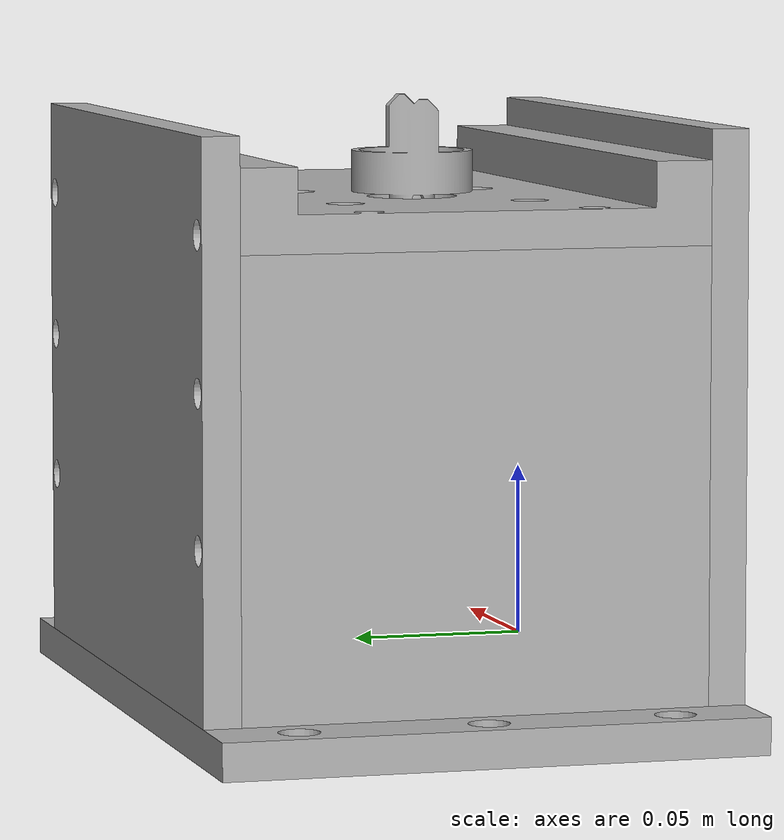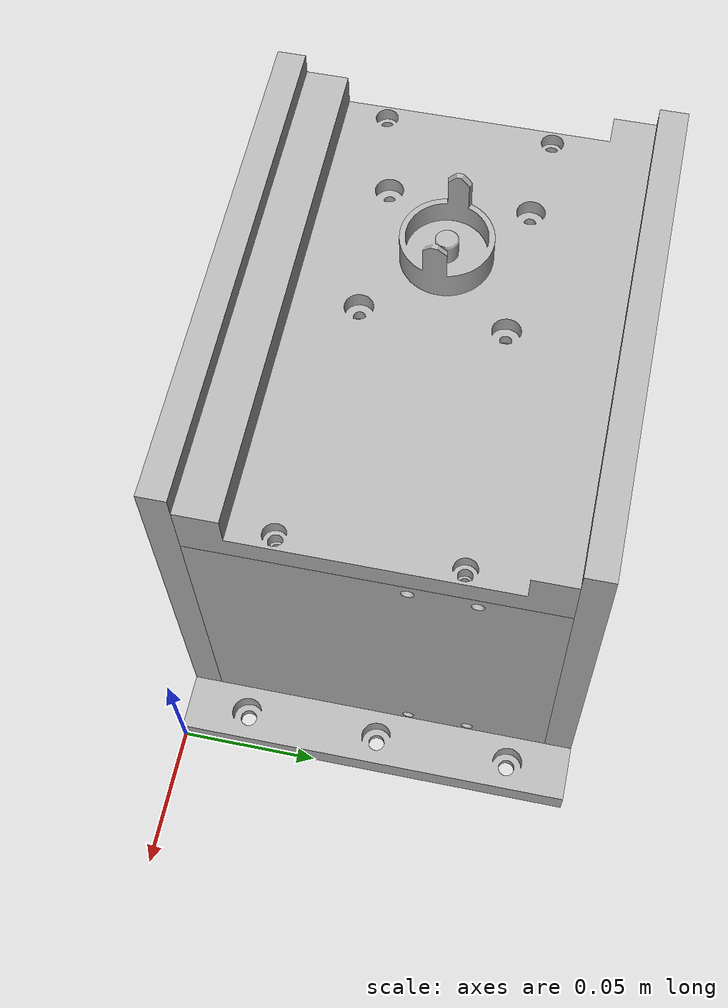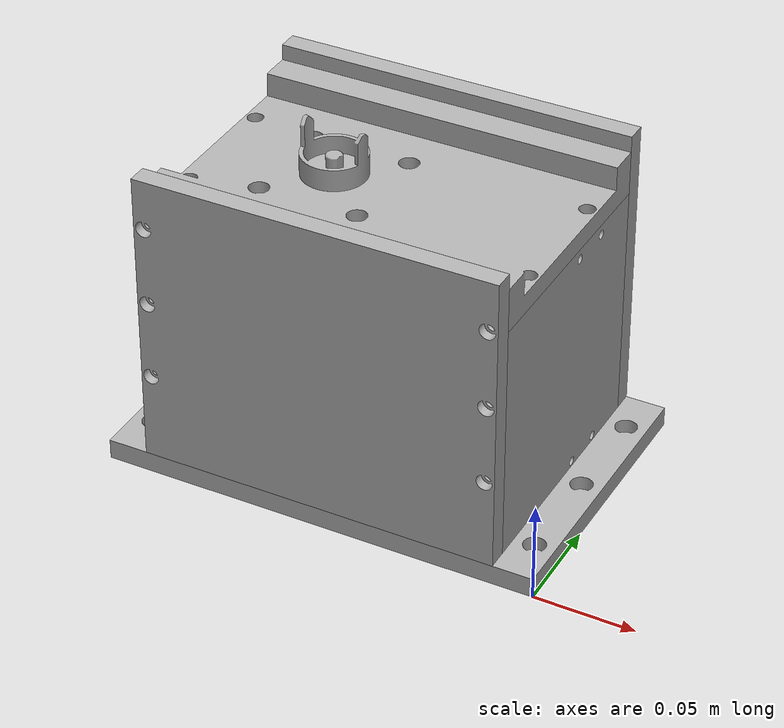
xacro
<?xml version="1.0" ?>
<robot name="고정장치" xmlns:xacro="http://www.ros.org/wiki/xacro">

<xacro:include filename="$(find 고정장치_description)/urdf/materials.xacro" />
<xacro:include filename="$(find 고정장치_description)/urdf/고정장치.trans" />
<xacro:include filename="$(find 고정장치_description)/urdf/고정장치.gazebo" />
<link name="base_link">
  <inertial>
    <origin xyz="-0.10999999999999556 0.07251121264321245 0.004996333843608021" rpy="0 0 0"/>
    <mass value="2.446873660836993"/>
    <inertia ixx="0.004289" iyy="0.00967" izz="0.013918" ixy="0.0" iyz="0.0" ixz="-0.0"/>
  </inertial>
  <visual>
    <origin xyz="0 0 0" rpy="0 0 0"/>
    <geometry>
      <mesh filename="package://고정장치_description/meshes/base_link.stl" scale="0.001 0.001 0.001"/>
    </geometry>
    <material name="silver"/>
  </visual>
  <collision>
    <origin xyz="0 0 0" rpy="0 0 0"/>
    <geometry>
      <mesh filename="package://고정장치_description/meshes/base_link.stl" scale="0.001 0.001 0.001"/>
    </geometry>
  </collision>
</link>

<link name="Servo1_1">
  <inertial>
    <origin xyz="3.4916514124461173e-14 8.487655023259322e-14 0.0005999999999809491" rpy="0 0 0"/>
    <mass value="0.006806278705239594"/>
    <inertia ixx="0.0" iyy="0.0" izz="1e-06" ixy="0.0" iyz="0.0" ixz="0.0"/>
  </inertial>
  <visual>
    <origin xyz="0.138 -0.0725 -0.0875" rpy="0 0 0"/>
    <geometry>
      <mesh filename="package://고정장치_description/meshes/Servo1_1.stl" scale="0.001 0.001 0.001"/>
    </geometry>
    <material name="silver"/>
  </visual>
  <collision>
    <origin xyz="0.138 -0.0725 -0.0875" rpy="0 0 0"/>
    <geometry>
      <mesh filename="package://고정장치_description/meshes/Servo1_1.stl" scale="0.001 0.001 0.001"/>
    </geometry>
  </collision>
</link>

<link name="Servo2_1">
  <inertial>
    <origin xyz="-0.0015816004302571796 5.898059818321144e-15 0.015322738889781397" rpy="0 0 0"/>
    <mass value="0.0040481964198345426"/>
    <inertia ixx="0.0" iyy="0.0" izz="0.0" ixy="0.0" iyz="-0.0" ixz="0.0"/>
  </inertial>
  <visual>
    <origin xyz="0.171 -0.0677 -0.0405" rpy="0 0 0"/>
    <geometry>
      <mesh filename="package://고정장치_description/meshes/Servo2_1.stl" scale="0.001 0.001 0.001"/>
    </geometry>
    <material name="silver"/>
  </visual>
  <collision>
    <origin xyz="0.171 -0.0677 -0.0405" rpy="0 0 0"/>
    <geometry>
      <mesh filename="package://고정장치_description/meshes/Servo2_1.stl" scale="0.001 0.001 0.001"/>
    </geometry>
  </collision>
</link>

<link name="L1_1">
  <inertial>
    <origin xyz="0.04000000000000252 8.58346151193061e-06 0.07498762221888246" rpy="0 0 0"/>
    <mass value="2.1009849657713837"/>
    <inertia ixx="0.003963" iyy="0.009546" izz="0.005618" ixy="0.0" iyz="-0.0" ixz="-0.0"/>
  </inertial>
  <visual>
    <origin xyz="0.15 -0.005 -0.01" rpy="0 0 0"/>
    <geometry>
      <mesh filename="package://고정장치_description/meshes/L1_1.stl" scale="0.001 0.001 0.001"/>
    </geometry>
    <material name="silver"/>
  </visual>
  <collision>
    <origin xyz="0.15 -0.005 -0.01" rpy="0 0 0"/>
    <geometry>
      <mesh filename="package://고정장치_description/meshes/L1_1.stl" scale="0.001 0.001 0.001"/>
    </geometry>
  </collision>
</link>

<link name="Back_1">
  <inertial>
    <origin xyz="-6.9111383282915995e-15 0.03250878091969619 0.05998243816059264" rpy="0 0 0"/>
    <mass value="1.1692860743084308"/>
    <inertia ixx="0.002917" iyy="0.00141" izz="0.001527" ixy="-0.0" iyz="-0.0" ixz="0.0"/>
  </inertial>
  <visual>
    <origin xyz="0.195 -0.04 -0.01" rpy="0 0 0"/>
    <geometry>
      <mesh filename="package://고정장치_description/meshes/Back_1.stl" scale="0.001 0.001 0.001"/>
    </geometry>
    <material name="silver"/>
  </visual>
  <collision>
    <origin xyz="0.195 -0.04 -0.01" rpy="0 0 0"/>
    <geometry>
      <mesh filename="package://고정장치_description/meshes/Back_1.stl" scale="0.001 0.001 0.001"/>
    </geometry>
  </collision>
</link>

<link name="R1_1">
  <inertial>
    <origin xyz="0.039999999999991515 -8.583461500927259e-06 0.07498762221887459" rpy="0 0 0"/>
    <mass value="2.1009849657713824"/>
    <inertia ixx="0.003963" iyy="0.009546" izz="0.005618" ixy="0.0" iyz="0.0" ixz="-0.0"/>
  </inertial>
  <visual>
    <origin xyz="0.15 -0.14 -0.01" rpy="0 0 0"/>
    <geometry>
      <mesh filename="package://고정장치_description/meshes/R1_1.stl" scale="0.001 0.001 0.001"/>
    </geometry>
    <material name="silver"/>
  </visual>
  <collision>
    <origin xyz="0.15 -0.14 -0.01" rpy="0 0 0"/>
    <geometry>
      <mesh filename="package://고정장치_description/meshes/R1_1.stl" scale="0.001 0.001 0.001"/>
    </geometry>
  </collision>
</link>

<link name="F1_1">
  <inertial>
    <origin xyz="-3.0749342969441096e-06 -0.02753926705472584 0.05998462950193841" rpy="0 0 0"/>
    <mass value="1.1666837707077449"/>
    <inertia ixx="0.002907" iyy="0.001401" izz="0.001525" ixy="0.0" iyz="-0.0" ixz="-0.0"/>
  </inertial>
  <visual>
    <origin xyz="0.025 -0.1 -0.01" rpy="0 0 0"/>
    <geometry>
      <mesh filename="package://고정장치_description/meshes/F1_1.stl" scale="0.001 0.001 0.001"/>
    </geometry>
    <material name="silver"/>
  </visual>
  <collision>
    <origin xyz="0.025 -0.1 -0.01" rpy="0 0 0"/>
    <geometry>
      <mesh filename="package://고정장치_description/meshes/F1_1.stl" scale="0.001 0.001 0.001"/>
    </geometry>
  </collision>
</link>

<link name="MotorDriver_1">
  <inertial>
    <origin xyz="-0.011239303650356684 0.002488130276015868 -0.05852996345426442" rpy="0 0 0"/>
    <mass value="0.7210496546217889"/>
    <inertia ixx="0.001293" iyy="0.000908" izz="0.000488" ixy="6e-06" iyz="-1.9e-05" ixz="-4e-06"/>
  </inertial>
  <visual>
    <origin xyz="0.03 -0.09405 -0.12675" rpy="0 0 0"/>
    <geometry>
      <mesh filename="package://고정장치_description/meshes/MotorDriver_1.stl" scale="0.001 0.001 0.001"/>
    </geometry>
    <material name="silver"/>
  </visual>
  <collision>
    <origin xyz="0.03 -0.09405 -0.12675" rpy="0 0 0"/>
    <geometry>
      <mesh filename="package://고정장치_description/meshes/MotorDriver_1.stl" scale="0.001 0.001 0.001"/>
    </geometry>
  </collision>
</link>

<link name="T1_1">
  <inertial>
    <origin xyz="-0.08429334830713939 -0.027487552999684514 0.007533335543486008" rpy="0 0 0"/>
    <mass value="2.204219544587429"/>
    <inertia ixx="0.003881" iyy="0.006044" izz="0.009789" ixy="0.0" iyz="0.0" ixz="4e-06"/>
  </inertial>
  <visual>
    <origin xyz="0.025 -0.1 -0.13" rpy="0 0 0"/>
    <geometry>
      <mesh filename="package://고정장치_description/meshes/T1_1.stl" scale="0.001 0.001 0.001"/>
    </geometry>
    <material name="silver"/>
  </visual>
  <collision>
    <origin xyz="0.025 -0.1 -0.13" rpy="0 0 0"/>
    <geometry>
      <mesh filename="package://고정장치_description/meshes/T1_1.stl" scale="0.001 0.001 0.001"/>
    </geometry>
  </collision>
</link>

<link name="ServoShaft_1">
  <inertial>
    <origin xyz="-7.584667154333924e-05 1.9664565626562047e-05 0.009584209226361301" rpy="0 0 0"/>
    <mass value="0.007434495823643457"/>
    <inertia ixx="0.0" iyy="0.0" izz="0.0" ixy="-0.0" iyz="-0.0" ixz="0.0"/>
  </inertial>
  <visual>
    <origin xyz="0.138 -0.0725 -0.132" rpy="0 0 0"/>
    <geometry>
      <mesh filename="package://고정장치_description/meshes/ServoShaft_1.stl" scale="0.001 0.001 0.001"/>
    </geometry>
    <material name="silver"/>
  </visual>
  <collision>
    <origin xyz="0.138 -0.0725 -0.132" rpy="0 0 0"/>
    <geometry>
      <mesh filename="package://고정장치_description/meshes/ServoShaft_1.stl" scale="0.001 0.001 0.001"/>
    </geometry>
  </collision>
</link>

<link name="Jig_1">
  <inertial>
    <origin xyz="2.1635561678140514e-05 1.1102230246251565e-14 0.005486282955048355" rpy="0 0 0"/>
    <mass value="0.03163742025368081"/>
    <inertia ixx="3e-06" iyy="4e-06" izz="5e-06" ixy="0.0" iyz="0.0" ixz="0.0"/>
  </inertial>
  <visual>
    <origin xyz="0.138 -0.0725 -0.1403" rpy="0 0 0"/>
    <geometry>
      <mesh filename="package://고정장치_description/meshes/Jig_1.stl" scale="0.001 0.001 0.001"/>
    </geometry>
    <material name="silver"/>
  </visual>
  <collision>
    <origin xyz="0.138 -0.0725 -0.1403" rpy="0 0 0"/>
    <geometry>
      <mesh filename="package://고정장치_description/meshes/Jig_1.stl" scale="0.001 0.001 0.001"/>
    </geometry>
  </collision>
</link>

<link name="Servo3_1">
  <inertial>
    <origin xyz="-0.0008126082473343121 -5.7988780331239e-05 -0.048107644599258814" rpy="0 0 0"/>
    <mass value="1.2771847015112354"/>
    <inertia ixx="0.001633" iyy="0.001669" izz="0.000787" ixy="2e-06" iyz="-1e-06" ixz="-4.4e-05"/>
  </inertial>
  <visual>
    <origin xyz="0.138 -0.0725 -0.132" rpy="0 0 0"/>
    <geometry>
      <mesh filename="package://고정장치_description/meshes/Servo3_1.stl" scale="0.001 0.001 0.001"/>
    </geometry>
    <material name="silver"/>
  </visual>
  <collision>
    <origin xyz="0.138 -0.0725 -0.132" rpy="0 0 0"/>
    <geometry>
      <mesh filename="package://고정장치_description/meshes/Servo3_1.stl" scale="0.001 0.001 0.001"/>
    </geometry>
  </collision>
</link>

<joint name="Servo3_Servo1" type="fixed">
  <origin xyz="0.0 0.0 -0.0445" rpy="0 0 0"/>
  <parent link="Servo3_1"/>
  <child link="Servo1_1"/>
</joint>

<joint name="Servo3_Servo2 " type="fixed">
  <origin xyz="-0.033 -0.0048 -0.0915" rpy="0 0 0"/>
  <parent link="Servo3_1"/>
  <child link="Servo2_1"/>
</joint>

<joint name="Bottom_L1" type="fixed">
  <origin xyz="-0.15 0.005 0.01" rpy="0 0 0"/>
  <parent link="base_link"/>
  <child link="L1_1"/>
</joint>

<joint name="Bottom_Back" type="fixed">
  <origin xyz="-0.195 0.04 0.01" rpy="0 0 0"/>
  <parent link="base_link"/>
  <child link="Back_1"/>
</joint>

<joint name="Bottom_R1" type="fixed">
  <origin xyz="-0.15 0.14 0.01" rpy="0 0 0"/>
  <parent link="base_link"/>
  <child link="R1_1"/>
</joint>

<joint name="Bottom_F1" type="fixed">
  <origin xyz="-0.025 0.1 0.01" rpy="0 0 0"/>
  <parent link="base_link"/>
  <child link="F1_1"/>
</joint>

<joint name="F1_MotorDriver" type="fixed">
  <origin xyz="-0.005 -0.00595 0.11675" rpy="0 0 0"/>
  <parent link="F1_1"/>
  <child link="MotorDriver_1"/>
</joint>

<joint name="F1_T1" type="fixed">
  <origin xyz="0.0 0.0 0.12" rpy="0 0 0"/>
  <parent link="F1_1"/>
  <child link="T1_1"/>
</joint>

<joint name="Servo3_ServoShaft" type="continuous">
  <origin xyz="0.0 0.0 0.0" rpy="0 0 0"/>
  <parent link="Servo3_1"/>
  <child link="ServoShaft_1"/>
  <axis xyz="-0.0 -0.0 1.0"/>
</joint>

<joint name="ServoShaft_Jig" type="fixed">
  <origin xyz="0.0 0.0 0.0083" rpy="0 0 0"/>
  <parent link="ServoShaft_1"/>
  <child link="Jig_1"/>
</joint>

<joint name="T1_Servo3" type="fixed">
  <origin xyz="-0.113 -0.0275 0.002" rpy="0 0 0"/>
  <parent link="T1_1"/>
  <child link="Servo3_1"/>
</joint>

</robot>

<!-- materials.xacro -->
<robot name="고정장치" xmlns:xacro="http://www.ros.org/wiki/xacro" >

<material name="silver">
  <color rgba="0.700 0.700 0.700 1.000"/>
</material>

</robot>

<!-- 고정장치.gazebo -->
<robot name="고정장치" xmlns:xacro="http://www.ros.org/wiki/xacro" >

<xacro:property name="body_color" value="Gazebo/Silver" />

<gazebo>
  <plugin name="control" filename="libgazebo_ros_control.so"/>
</gazebo>
<gazebo reference="base_link">
  <material>${body_color}</material>
  <mu1>0.2</mu1>
  <mu2>0.2</mu2>
  <selfCollide>true</selfCollide>
  <gravity>true</gravity>
</gazebo>

<gazebo reference="Servo1_1">
  <material>${body_color}</material>
  <mu1>0.2</mu1>
  <mu2>0.2</mu2>
  <selfCollide>true</selfCollide>
</gazebo>

<gazebo reference="Servo2_1">
  <material>${body_color}</material>
  <mu1>0.2</mu1>
  <mu2>0.2</mu2>
  <selfCollide>true</selfCollide>
</gazebo>

<gazebo reference="L1_1">
  <material>${body_color}</material>
  <mu1>0.2</mu1>
  <mu2>0.2</mu2>
  <selfCollide>true</selfCollide>
</gazebo>

<gazebo reference="Back_1">
  <material>${body_color}</material>
  <mu1>0.2</mu1>
  <mu2>0.2</mu2>
  <selfCollide>true</selfCollide>
</gazebo>

<gazebo reference="R1_1">
  <material>${body_color}</material>
  <mu1>0.2</mu1>
  <mu2>0.2</mu2>
  <selfCollide>true</selfCollide>
</gazebo>

<gazebo reference="F1_1">
  <material>${body_color}</material>
  <mu1>0.2</mu1>
  <mu2>0.2</mu2>
  <selfCollide>true</selfCollide>
</gazebo>

<gazebo reference="MotorDriver_1">
  <material>${body_color}</material>
  <mu1>0.2</mu1>
  <mu2>0.2</mu2>
  <selfCollide>true</selfCollide>
</gazebo>

<gazebo reference="T1_1">
  <material>${body_color}</material>
  <mu1>0.2</mu1>
  <mu2>0.2</mu2>
  <selfCollide>true</selfCollide>
</gazebo>

<gazebo reference="ServoShaft_1">
  <material>${body_color}</material>
  <mu1>0.2</mu1>
  <mu2>0.2</mu2>
  <selfCollide>true</selfCollide>
</gazebo>

<gazebo reference="Jig_1">
  <material>${body_color}</material>
  <mu1>0.2</mu1>
  <mu2>0.2</mu2>
  <selfCollide>true</selfCollide>
</gazebo>

<gazebo reference="Servo3_1">
  <material>${body_color}</material>
  <mu1>0.2</mu1>
  <mu2>0.2</mu2>
  <selfCollide>true</selfCollide>
</gazebo>

</robot>
